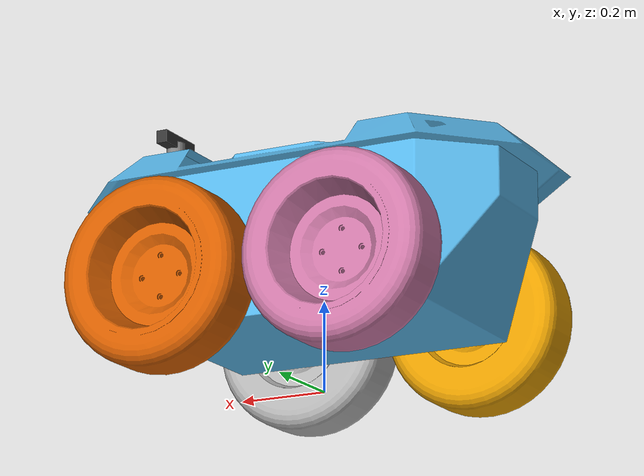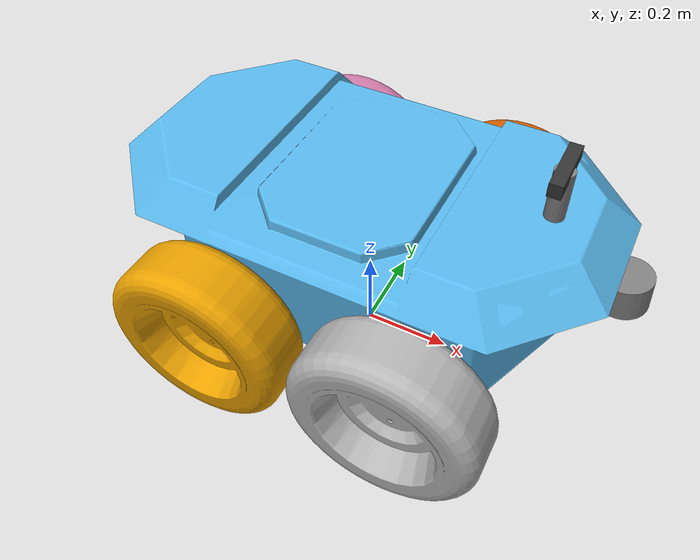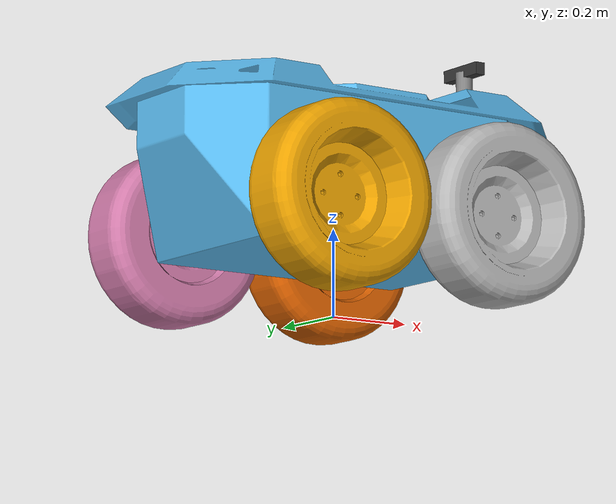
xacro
<?xml version="1.0"?>
<robot name="seekur_jr" xmlns:xacro="http://www.ros.org/wiki/xacro">

    <!-- Argument pour la couleur -->
    <xacro:arg name="robot_color" default="Grey"/>
    <xacro:property name="robot_color" value="$(arg robot_color)"/>

    <xacro:arg name="lidar_pitch_deg" default="5"/>
    <xacro:arg name="mesh_uri" default="file://$(find seekur_driver)/description/meshes"/>
    <xacro:arg name="drivetrain" default="tripod"/>

    <!-- Chassis -->
    <xacro:property name="base_length" value="1.051" />      <!-- [DS] 1051 mm (1198 mm bumpers inclus) -->
    <xacro:property name="base_width" value="0.45" />        <!-- [LAB] largeur du chassis porteur ; gap ~20 mm par cote avec le pneu -->
    <xacro:property name="base_height" value="0.381" />      <!-- [DED] hauteur totale 494 - garde au sol 113 -->
    <xacro:property name="chassis_drop" value="0.09" />      <!-- [LAB] le chassis descend sous l'axe de roue (logement moteurs) -->

    <!-- Roues : pneu marque 16 x 6.50-8 NHS -->
    <xacro:property name="wheel_radius" value="0.203" />     <!-- [DS] 16" = 406 mm diam ; confirme [LAB] apres regonflage (20 cm) -->
    <xacro:property name="wheel_length" value="0.165" />     <!-- [DS] 6.50" de section = 165 mm -->
    <xacro:property name="wheel_separation" value="0.663" /> <!-- [DS] 663 mm ; confirme [LAB] a 3 mm pres -->
    <xacro:property name="wheelbase" value="0.425" />        <!-- [DS] 425 mm ; visuels seulement (voir roues visuelles) -->

    <xacro:property name="mesh_dir" value="$(arg mesh_uri)" />

    <xacro:property name="camera_mast_height" value="0.12" />  <!-- [LAB] camera 12 cm au-dessus du top du chassis -->
    <xacro:property name="camera_mast_radius" value="0.02" />  <!-- cosmetique, non mesure -->
    <xacro:property name="camera_x" value="0.376" />           <!-- [LAB] 15 cm en retrait de la bordure avant : base_length/2 - 0.15 -->
    <xacro:property name="chassis_top" value="${base_height - chassis_drop}" />

    <!-- Masses (datasheet : robot complet 77 kg) -->
    <xacro:property name="base_mass" value="${44.0 if '$(arg drivetrain)' == 'skid4' else 60.0}" />
    <xacro:property name="wheel_mass" value="8.0" />         <!-- 16" pneumatique ~8 kg piece -->
    <xacro:property name="caster_mass" value="0.5" />        <!-- non present sur vrai SeekurJR, garde pour stabilite Gazebo -->

    <!-- Couleurs -->
    <material name="blue"><color rgba="0 0 0.8 1" /></material>
    <material name="grey"><color rgba="0.5 0.5 0.5 1" /></material>
    <material name="white"><color rgba="1 1 1 1" /></material>
    <material name="black"><color rgba="0.2 0.2 0.2 1"/></material>
    <material name="red"><color rgba="0.8 0 0 1"/></material>

    <material name="robot_material">
        <color rgba="0.5 0.5 0.5 1" />
    </material>

    <!-- Macros d'inertie -->
    <xacro:macro name="box_inertia" params="m x y z o_xyz o_rpy">
        <inertial>
            <origin xyz="${o_xyz}" rpy="${o_rpy}" />
            <mass value="${m}" />
            <inertia ixx="${(m/12) * (y*y + z*z)}" ixy="0.0" ixz="0.0"
                     iyy="${(m/12) * (x*x + z*z)}" iyz="0.0"
                     izz="${(m/12) * (x*x + y*y)}" />
        </inertial>
    </xacro:macro>

    <xacro:macro name="cylinder_inertia" params="m r l o_xyz o_rpy">
        <inertial>
            <origin xyz="${o_xyz}" rpy="${o_rpy}" />
            <mass value="${m}" />
            <inertia ixx="${(m/12) * (3*r*r + l*l)}" ixy="0.0" ixz="0.0"
                     iyy="${(m/12) * (3*r*r + l*l)}" iyz="0.0"
                     izz="${(m/2) * r*r}" />
        </inertial>
    </xacro:macro>

    <xacro:macro name="sphere_inertia" params="m r o_xyz o_rpy">
        <inertial>
            <origin xyz="${o_xyz}" rpy="${o_rpy}" />
            <mass value="${m}" />
            <inertia ixx="${(2/5) * m * r*r}" ixy="0.0" ixz="0.0"
                     iyy="${(2/5) * m * r*r}" iyz="0.0"
                     izz="${(2/5) * m * r*r}" />
        </inertial>
    </xacro:macro>

    <!-- Links -->
    <link name="base_footprint" />

    <link name="base_link">
        <visual>
            <geometry>
                <mesh filename="${mesh_dir}/seekurJr_moh.obj" />
            </geometry>
            <origin xyz="0 0 0" rpy="0 0 0" />
        </visual>
        <collision>
            <geometry>
                <box size="${base_length} ${base_width} ${base_height}" />
            </geometry>
            <origin xyz="0 0 ${base_height / 2.0 - chassis_drop}" rpy="0 0 0" />
        </collision>
        <xacro:box_inertia m="${base_mass}" x="${base_length}" y="${base_width}" z="${base_height}"
                          o_xyz="0 0 ${base_height / 2.0 - chassis_drop}" o_rpy="0 0 0" />
    </link>

    <!-- (argument drivetrain declare en tete de fichier : base_mass en depend) -->

    <xacro:macro name="drive_wheel" params="side x y">
        <link name="${side}_wheel_link">
            <collision>
                <geometry>
                    <cylinder radius="${wheel_radius}" length="${wheel_length}" />
                </geometry>
                <origin xyz="0 0 0" rpy="${pi / 2.0} 0 0" />
            </collision>
            <xacro:cylinder_inertia m="${wheel_mass}" r="${wheel_radius}" l="${wheel_length}"
                                   o_xyz="0 0 0" o_rpy="${pi / 2.0} 0 0" />
        </link>
        <joint name="base_${side}_wheel_joint" type="continuous">
            <parent link="base_link" />
            <child link="${side}_wheel_link" />
            <origin xyz="${x} ${y} 0" rpy="0 0 0" />
            <axis xyz="0 1 0" />
        </joint>
    </xacro:macro>

    <xacro:property name="extra_drive_joints"><!-- aucune roue motrice supplementaire --></xacro:property>

    <xacro:include filename="drivetrain_$(arg drivetrain).xacro" />

    <xacro:macro name="visual_wheel" params="name x y yaw mimic_joint">
        <link name="${name}_wheel_visual_link">
            <visual>
                <geometry>
                    <mesh filename="${mesh_dir}/seekurjr_wheel.obj" />
                </geometry>
                <origin xyz="0 0 0" rpy="0 0 ${yaw}" />
            </visual>
            <xacro:cylinder_inertia m="0.01" r="${wheel_radius}" l="${wheel_length}"
                                   o_xyz="0 0 0" o_rpy="${pi / 2.0} 0 0" />
        </link>
        <joint name="${name}_wheel_visual_joint" type="continuous">
            <parent link="base_link" />
            <child link="${name}_wheel_visual_link" />
            <origin xyz="${x} ${y} 0" rpy="0 0 0" />
            <axis xyz="0 1 0" />
            <mimic joint="${mimic_joint}" multiplier="1.0" offset="0.0" />
        </joint>
    </xacro:macro>

    <xacro:visual_wheel name="front_left"  x="${wheelbase / 2.0}"  y="${wheel_separation / 2.0}"
                        yaw="${pi}" mimic_joint="base_left_wheel_joint" />
    <xacro:visual_wheel name="rear_left"   x="${-wheelbase / 2.0}" y="${wheel_separation / 2.0}"
                        yaw="${pi}" mimic_joint="base_left_wheel_joint" />
    <xacro:visual_wheel name="front_right" x="${wheelbase / 2.0}"  y="${-wheel_separation / 2.0}"
                        yaw="0"     mimic_joint="base_right_wheel_joint" />
    <xacro:visual_wheel name="rear_right"  x="${-wheelbase / 2.0}" y="${-wheel_separation / 2.0}"
                        yaw="0"     mimic_joint="base_right_wheel_joint" />

    <!-- LiDAR Link -->
    <link name="laser_frame">
        <visual>
            <geometry>
                <cylinder radius="0.05" length="0.07" />
            </geometry>
            <origin xyz="0 0 0" rpy="0 0 0" />
            <material name="grey" />
        </visual>
        <collision>
            <geometry>
                <cylinder radius="0.05" length="0.07" />
            </geometry>
            <origin xyz="0 0 0" rpy="0 0 0" />
        </collision>
        <xacro:cylinder_inertia m="1.0" r="0.05" l="0.07"
                               o_xyz="0 0 0" o_rpy="0 0 0" />
    </link>

    <link name="imu_link">
        <visual>
            <geometry>
                <box size="0.03 0.03 0.02" />
            </geometry>
            <origin xyz="0 0 0.02" rpy="0 0 0" />
            <material name="red" />
        </visual>
        <xacro:box_inertia m="0.05" x="0.03" y="0.03" z="0.02"
                          o_xyz="0 0 0" o_rpy="0 0 0" />
    </link>

    <link name="camera_front_mast_link">
        <visual>
            <geometry>
                <cylinder radius="${camera_mast_radius}" length="${camera_mast_height}" />
            </geometry>
            <origin xyz="0 0 0" rpy="0 0 0" />
            <material name="grey" />
        </visual>
        <xacro:cylinder_inertia m="0.3" r="${camera_mast_radius}" l="${camera_mast_height}"
                               o_xyz="0 0 0" o_rpy="0 0 0" />
    </link>

    <link name="camera_front_link">
        <visual>
            <!-- D455 : 124 x 26 x 29 mm approximatif (bandeau caviar) -->
            <geometry>
                <box size="0.026 0.124 0.029" />
            </geometry>
            <origin xyz="0 0 0" rpy="0 0 0" />
            <material name="black" />
        </visual>
        <xacro:box_inertia m="0.1" x="0.026" y="0.124" z="0.029"
                          o_xyz="0 0 0" o_rpy="0 0 0" />
    </link>

    <link name="camera_front_optical_frame" />

    <!-- Joints -->
    <joint name="base_joint" type="fixed">
        <parent link="base_footprint" />
        <child link="base_link" />
        <origin xyz="0 0 ${wheel_radius}" rpy="0 0 0"/>
    </joint>

    <joint name="imu_joint" type="fixed">
        <parent link="base_link" />
        <child link="imu_link" />
        <origin xyz="0 0 ${-chassis_drop}" rpy="0 0 0" />
    </joint>

    <xacro:property name="lidar_pitch_deg" value="$(arg lidar_pitch_deg)" />
    <joint name="laser_joint" type="fixed">
        <parent link="base_link" />
        <child link="laser_frame" />
        <origin xyz="0.535 0 0.187" rpy="0 ${-radians(lidar_pitch_deg)} 0" />
    </joint>

    <!-- Mat : pose sur le top du chassis, monte de camera_mast_height.
         Son origine est au milieu du cylindre, d'ou le /2. -->
    <joint name="camera_front_mast_joint" type="fixed">
        <parent link="base_link" />
        <child link="camera_front_mast_link" />
        <origin xyz="${camera_x} 0 ${chassis_top + camera_mast_height / 2.0}" rpy="0 0 0" />
    </joint>

    <joint name="camera_front_joint" type="fixed">
        <parent link="base_link" />
        <child link="camera_front_link" />
        <origin xyz="${camera_x} 0 ${chassis_top + camera_mast_height}" rpy="0 0 0" />
    </joint>

    <!-- Joint optique : rotation qui aligne le repere optique standard
         (Z vers la scene) avec le repere robot (X vers la scene). -->
    <joint name="camera_front_optical_joint" type="fixed">
        <parent link="camera_front_link" />
        <child link="camera_front_optical_frame" />
        <origin xyz="0 0 0" rpy="${-pi/2} 0 ${-pi/2}" />
    </joint>

    <gazebo>
        <plugin filename="libgz-sim-diff-drive-system.so" name="gz::sim::systems::DiffDrive">
            <!-- Roues motrices physiques : TOUJOURS EN PREMIER. L'odometrie
                 du plugin est calculee sur le premier joint de chaque cote. -->
            <left_joint>base_left_wheel_joint</left_joint>
            <right_joint>base_right_wheel_joint</right_joint>
            <left_joint>front_left_wheel_visual_joint</left_joint>
            <left_joint>rear_left_wheel_visual_joint</left_joint>
            <right_joint>front_right_wheel_visual_joint</right_joint>
            <right_joint>rear_right_wheel_visual_joint</right_joint>
            <!-- Roues motrices physiques supplementaires de la variante
                 (vide sauf skid4, voir extra_drive_joints). -->
            <xacro:insert_block name="extra_drive_joints" />
            <!-- Doivent rester coherents avec les proprietes xacro en tete
                 de fichier. Gazebo ne lit pas les ${} ici, d'ou la
                 duplication en dur des valeurs. -->
            <wheel_separation>0.663</wheel_separation>      <!-- [DS] -->
            <wheel_radius>0.203</wheel_radius>              <!-- [DS] -->

            <topic>cmd_vel</topic>
            <odom_topic>odom</odom_topic>
            <tf_topic>tf</tf_topic>
            <frame_id>odom</frame_id>
            <child_frame_id>base_footprint</child_frame_id>
            <publish_odom>true</publish_odom>
            <publish_odom_tf>false</publish_odom_tf>
            <publish_wheel_tf>false</publish_wheel_tf>
        </plugin>
    </gazebo>

    <gazebo>
        <plugin filename="gz-sim-sensors-system" name="gz::sim::systems::Sensors">
            <render_engine>ogre2</render_engine>
        </plugin>
    </gazebo>

    <gazebo>
        <plugin filename="gz-sim-imu-system" name="gz::sim::systems::Imu">
        </plugin>
    </gazebo>

    <!-- Plugin LiDAR -->
    <gazebo reference="laser_frame">
        <sensor name="laser_scanner" type="gpu_lidar">
            <pose>0 0 0 0 0 0</pose>
            <topic>scan</topic>
            <gz_frame_id>laser_frame</gz_frame_id>
            <update_rate>25</update_rate>   <!-- 10 -> 25 (LMS111 standard) -->
            <ray>
                <scan>
                    <horizontal>
                        <samples>377</samples>  <!-- anciennes valeurs  540 -> 541 (270° / 0.5° + 1) -->
                        <resolution>1</resolution>
                        <min_angle>-1.6406</min_angle>  <!-- anciennes valeurs  -2.356 -->
                        <max_angle>1.6406</max_angle>   <!-- anciennes valeurs 2.356 -->
                    </horizontal>
                </scan>
                <range>
                    <min>0.5</min>  <!-- 0.1 -> 0.5 (aveugle près) -->
                    <max>20.0</max>
                    <resolution>0.01</resolution>
                </range>
                <noise>
                    <type>gaussian</type>
                    <mean>0.0</mean>
                    <stddev>0.01</stddev> <!-- 0.01 -> 0.012 (spec réelle) -->
                </noise>
            </ray>
        </sensor>
    </gazebo>

    <gazebo reference="imu_link">
        <sensor name="imu_sensor" type="imu">
            <pose>0 0 0 0 0 0</pose>
            <topic>imu/data</topic>
            <gz_frame_id>imu_link</gz_frame_id>
            <update_rate>100</update_rate>
            <always_on>1</always_on>
            <imu>
                <angular_velocity>
                    <x><noise type="gaussian"><mean>0.0</mean><stddev>2e-4</stddev></noise></x>
                    <y><noise type="gaussian"><mean>0.0</mean><stddev>2e-4</stddev></noise></y>
                    <z><noise type="gaussian"><mean>0.0</mean><stddev>2e-4</stddev></noise></z>
                </angular_velocity>
                <linear_acceleration>
                    <x><noise type="gaussian"><mean>0.0</mean><stddev>1.7e-2</stddev></noise></x>
                    <y><noise type="gaussian"><mean>0.0</mean><stddev>1.7e-2</stddev></noise></y>
                    <z><noise type="gaussian"><mean>0.0</mean><stddev>1.7e-2</stddev></noise></z>
                </linear_acceleration>
            </imu>
        </sensor>
    </gazebo>

    <gazebo reference="camera_front_link">
        <sensor name="camera_d455" type="rgbd_camera">
            <pose>0 0 0 0 0 0</pose>
            <topic>camera_front</topic>
            <gz_frame_id>camera_front_optical_frame</gz_frame_id>
            <update_rate>30</update_rate>
            <always_on>1</always_on>
            <camera>
                <horizontal_fov>1.5708</horizontal_fov> <!-- 90 deg = pi/2 -->
                <!-- 848x480 : resolution native RealSense D455. -->
                <image>
                    <width>848</width>
                    <height>480</height>
                    <format>R8G8B8</format>
                </image>

                <!-- Image COULEUR : pas de limite pratique, comme la vraie D455 -->
                <clip>
                    <near>0.05</near>
                    <far>50.0</far>
                </clip>
                <!-- PROFONDEUR : plage fiable de la D455 (0.6 - 6 m) -->
                <depth_camera>
                    <clip>
                        <near>0.6</near>
                        <far>6.0</far>
                    </clip>
                </depth_camera>

                <noise>
                    <type>gaussian</type>
                    <mean>0.0</mean>
                    <stddev>0.007</stddev>
                </noise>
            </camera>
        </sensor>
    </gazebo>

    <!-- Propriétés Gazebo -->

    <gazebo reference="laser_frame">
        <material>Gazebo/Grey</material>
    </gazebo>

    <gazebo reference="camera_front_mast_link">
        <material>Gazebo/Grey</material>
    </gazebo>

    <gazebo reference="camera_front_link">
        <material>Gazebo/Black</material>
    </gazebo>
</robot>

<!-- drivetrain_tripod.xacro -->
<robot xmlns:xacro="http://www.ros.org/wiki/xacro">

    <xacro:drive_wheel side="right" x="${base_length / 4.0}" y="${-wheel_separation / 2.0}" />
    <xacro:drive_wheel side="left"  x="${base_length / 4.0}" y="${wheel_separation / 2.0}" />

    <link name="caster_wheel_link">
        <collision>
            <geometry>
                <sphere radius="${wheel_radius / 2.0}" />
            </geometry>
            <origin xyz="0 0 0" rpy="0 0 0" />
        </collision>
        <xacro:sphere_inertia m="${caster_mass}" r="${wheel_radius / 2.0}"
                             o_xyz="0 0 0" o_rpy="0 0 0" />
    </link>

    <joint name="base_caster_wheel_joint" type="fixed">
        <parent link="base_link" />
        <child link="caster_wheel_link" />
        <origin xyz="${-base_length / 3.0} 0 ${-wheel_radius / 2.0}" rpy="0 0 0" />
    </joint>

    <gazebo reference="caster_wheel_link">
        <material>Gazebo/Black</material>
        <mu1 value="0.001" />
        <mu2 value="0.001" />
    </gazebo>

    <gazebo>
        <plugin filename="libgz-sim-joint-state-publisher-system.so" name="gz::sim::systems::JointStatePublisher">
            <joint_name>base_left_wheel_joint</joint_name>
            <joint_name>base_right_wheel_joint</joint_name>
        </plugin>
    </gazebo>

</robot>
